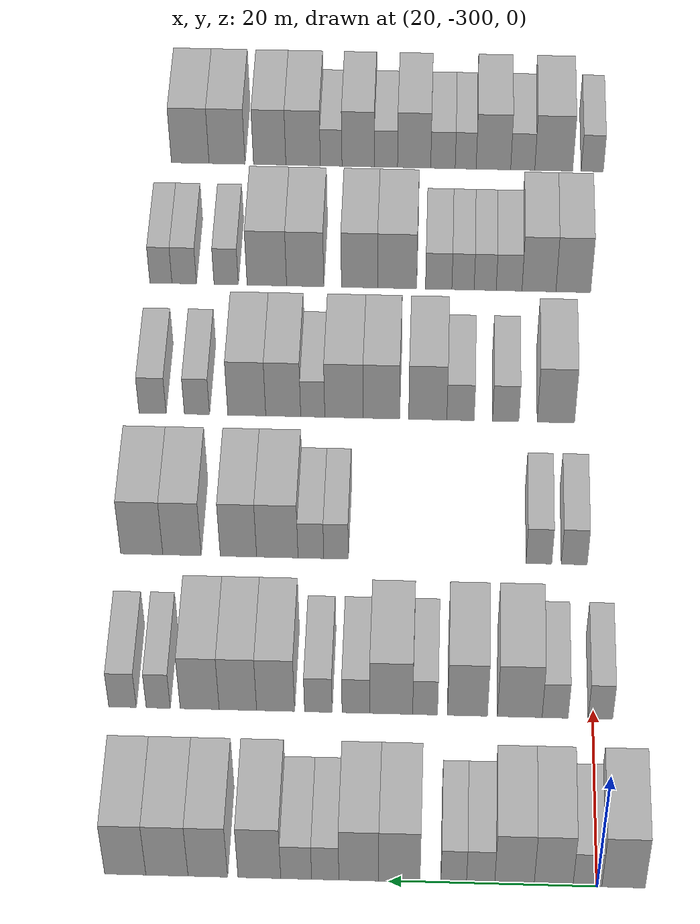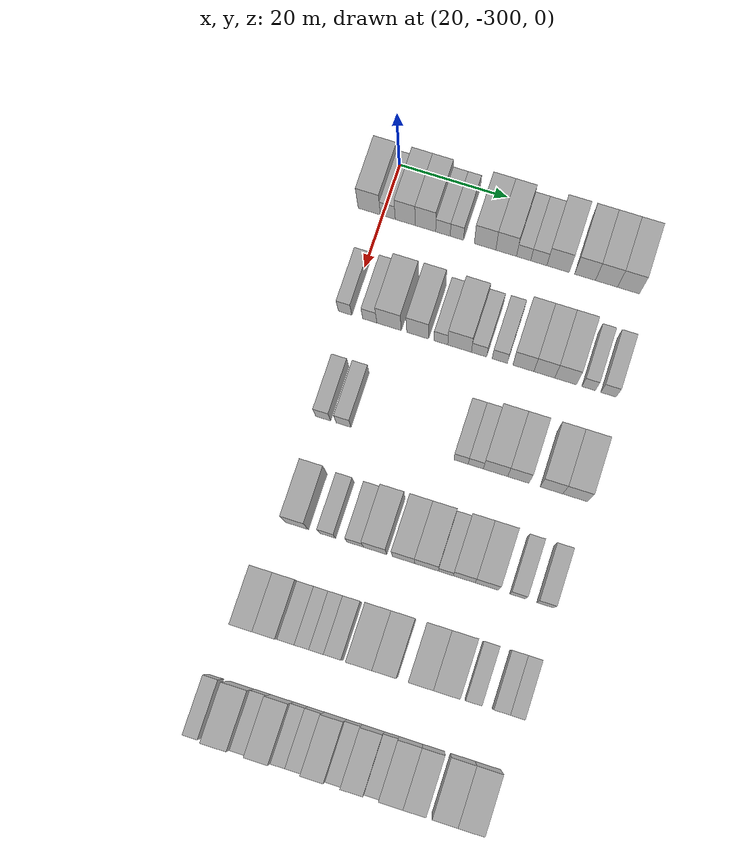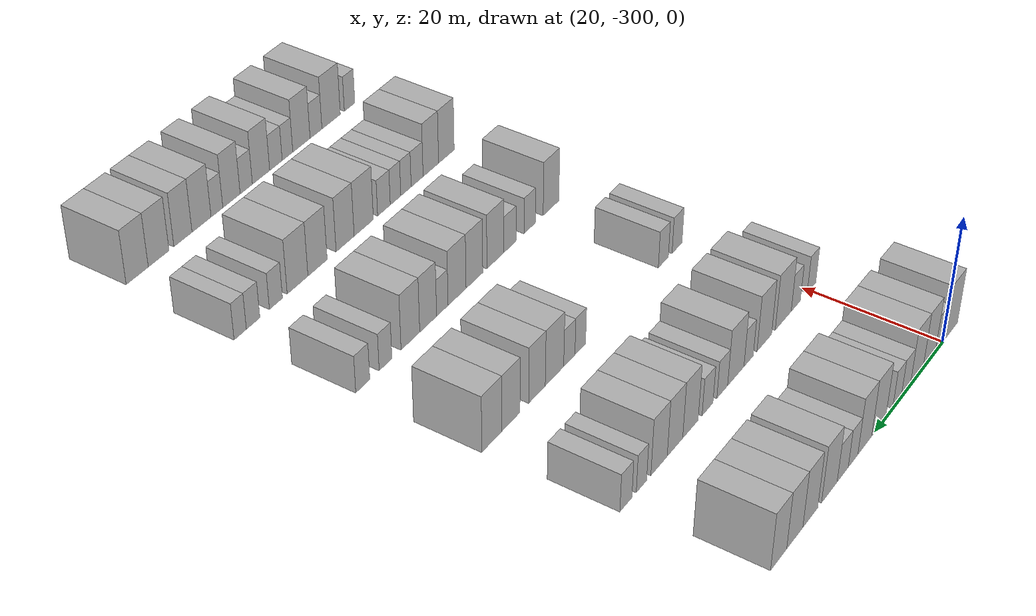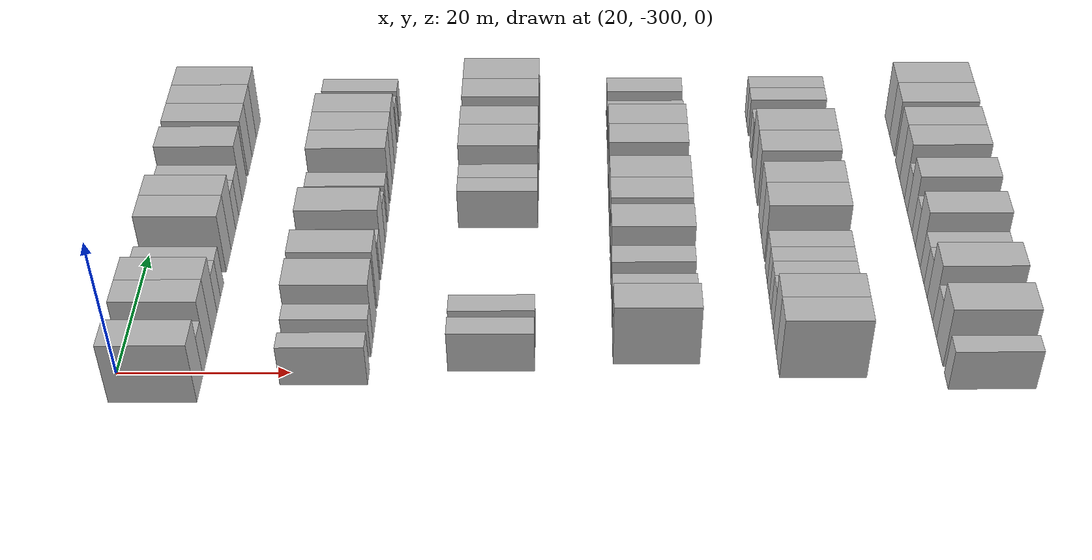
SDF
<sdf version="1.6">
 <world name="default">
  <model name="building_13">
   <static>1</static>
   <pose>25.0000 -302.4807 0 0.000000 0.000000 0.000000</pose>
   <link name="link">
    <pose>0 0 4.50 0 0 0</pose>
    <collision name="collision"><geometry><box><size>10.0000 4.1436 9.0000</size></box></geometry></collision>
    <visual name="visual">
     <cast_shadows>0</cast_shadows>
     <geometry><box><size>10.0000 4.1436 9.0000</size></box></geometry>
     <material>
      <script>
       <uri>model://HANNAS_wall/materials/scripts</uri>
       <uri>model://HANNAS_wall/materials/textures</uri>
       <name>vrc/HANNAS_wall</name>
      </script>
     </material>
    </visual>
   </link>
  </model>
  <model name="building_14">
   <static>1</static>
   <pose>25.0000 -299.0259 0 0.000000 0.000000 0.000000</pose>
   <link name="link">
    <pose>0 0 3.00 0 0 0</pose>
    <collision name="collision"><geometry><box><size>10.0000 2.7659 6.0000</size></box></geometry></collision>
    <visual name="visual">
     <cast_shadows>0</cast_shadows>
     <geometry><box><size>10.0000 2.7659 6.0000</size></box></geometry>
     <material>
      <script>
       <uri>model://HANNAS_wall/materials/scripts</uri>
       <uri>model://HANNAS_wall/materials/textures</uri>
       <name>vrc/HANNAS_wall</name>
      </script>
     </material>
    </visual>
   </link>
  </model>
  <model name="building_15">
   <static>1</static>
   <pose>25.0000 -295.7829 0 0.000000 0.000000 0.000000</pose>
   <link name="link">
    <pose>0 0 4.50 0 0 0</pose>
    <collision name="collision"><geometry><box><size>10.0000 3.7201 9.0000</size></box></geometry></collision>
    <visual name="visual">
     <cast_shadows>0</cast_shadows>
     <geometry><box><size>10.0000 3.7201 9.0000</size></box></geometry>
     <material>
      <script>
       <uri>model://HANNAS_wall/materials/scripts</uri>
       <uri>model://HANNAS_wall/materials/textures</uri>
       <name>vrc/HANNAS_wall</name>
      </script>
     </material>
    </visual>
   </link>
  </model>
  <model name="building_16">
   <static>1</static>
   <pose>25.0000 -292.0326 0 0.000000 0.000000 0.000000</pose>
   <link name="link">
    <pose>0 0 4.50 0 0 0</pose>
    <collision name="collision"><geometry><box><size>10.0000 3.7806 9.0000</size></box></geometry></collision>
    <visual name="visual">
     <cast_shadows>0</cast_shadows>
     <geometry><box><size>10.0000 3.7806 9.0000</size></box></geometry>
     <material>
      <script>
       <uri>model://HANNAS_wall/materials/scripts</uri>
       <uri>model://HANNAS_wall/materials/textures</uri>
       <name>vrc/HANNAS_wall</name>
      </script>
     </material>
    </visual>
   </link>
  </model>
  <model name="building_17">
   <static>1</static>
   <pose>25.0000 -288.7904 0 0.000000 0.000000 0.000000</pose>
   <link name="link">
    <pose>0 0 3.00 0 0 0</pose>
    <collision name="collision"><geometry><box><size>10.0000 2.7039 6.0000</size></box></geometry></collision>
    <visual name="visual">
     <cast_shadows>0</cast_shadows>
     <geometry><box><size>10.0000 2.7039 6.0000</size></box></geometry>
     <material>
      <script>
       <uri>model://HANNAS_wall/materials/scripts</uri>
       <uri>model://HANNAS_wall/materials/textures</uri>
       <name>vrc/HANNAS_wall</name>
      </script>
     </material>
    </visual>
   </link>
  </model>
  <model name="building_18">
   <static>1</static>
   <pose>25.0000 -286.2109 0 0.000000 0.000000 0.000000</pose>
   <link name="link">
    <pose>0 0 3.00 0 0 0</pose>
    <collision name="collision"><geometry><box><size>10.0000 2.4550 6.0000</size></box></geometry></collision>
    <visual name="visual">
     <cast_shadows>0</cast_shadows>
     <geometry><box><size>10.0000 2.4550 6.0000</size></box></geometry>
     <material>
      <script>
       <uri>model://HANNAS_wall/materials/scripts</uri>
       <uri>model://HANNAS_wall/materials/textures</uri>
       <name>vrc/HANNAS_wall</name>
      </script>
     </material>
    </visual>
   </link>
  </model>
  <model name="building_19">
   <static>1</static>
   <pose>25.0000 -281.0033 0 0.000000 0.000000 0.000000</pose>
   <link name="link">
    <pose>0 0 4.50 0 0 0</pose>
    <collision name="collision"><geometry><box><size>10.0000 3.9601 9.0000</size></box></geometry></collision>
    <visual name="visual">
     <cast_shadows>0</cast_shadows>
     <geometry><box><size>10.0000 3.9601 9.0000</size></box></geometry>
     <material>
      <script>
       <uri>model://HANNAS_wall/materials/scripts</uri>
       <uri>model://HANNAS_wall/materials/textures</uri>
       <name>vrc/HANNAS_wall</name>
      </script>
     </material>
    </visual>
   </link>
  </model>
  <model name="building_20">
   <static>1</static>
   <pose>25.0000 -277.1135 0 0.000000 0.000000 0.000000</pose>
   <link name="link">
    <pose>0 0 4.50 0 0 0</pose>
    <collision name="collision"><geometry><box><size>10.0000 3.8196 9.0000</size></box></geometry></collision>
    <visual name="visual">
     <cast_shadows>0</cast_shadows>
     <geometry><box><size>10.0000 3.8196 9.0000</size></box></geometry>
     <material>
      <script>
       <uri>model://HANNAS_wall/materials/scripts</uri>
       <uri>model://HANNAS_wall/materials/textures</uri>
       <name>vrc/HANNAS_wall</name>
      </script>
     </material>
    </visual>
   </link>
  </model>
  <model name="building_21">
   <static>1</static>
   <pose>25.0000 -273.8950 0 0.000000 0.000000 0.000000</pose>
   <link name="link">
    <pose>0 0 3.00 0 0 0</pose>
    <collision name="collision"><geometry><box><size>10.0000 2.6172 6.0000</size></box></geometry></collision>
    <visual name="visual">
     <cast_shadows>0</cast_shadows>
     <geometry><box><size>10.0000 2.6172 6.0000</size></box></geometry>
     <material>
      <script>
       <uri>model://HANNAS_wall/materials/scripts</uri>
       <uri>model://HANNAS_wall/materials/textures</uri>
       <name>vrc/HANNAS_wall</name>
      </script>
     </material>
    </visual>
   </link>
  </model>
  <model name="building_22">
   <static>1</static>
   <pose>25.0000 -271.1016 0 0.000000 0.000000 0.000000</pose>
   <link name="link">
    <pose>0 0 3.00 0 0 0</pose>
    <collision name="collision"><geometry><box><size>10.0000 2.9697 6.0000</size></box></geometry></collision>
    <visual name="visual">
     <cast_shadows>0</cast_shadows>
     <geometry><box><size>10.0000 2.9697 6.0000</size></box></geometry>
     <material>
      <script>
       <uri>model://HANNAS_wall/materials/scripts</uri>
       <uri>model://HANNAS_wall/materials/textures</uri>
       <name>vrc/HANNAS_wall</name>
      </script>
     </material>
    </visual>
   </link>
  </model>
  <model name="building_23">
   <static>1</static>
   <pose>25.0000 -267.5623 0 0.000000 0.000000 0.000000</pose>
   <link name="link">
    <pose>0 0 4.50 0 0 0</pose>
    <collision name="collision"><geometry><box><size>10.0000 4.1090 9.0000</size></box></geometry></collision>
    <visual name="visual">
     <cast_shadows>0</cast_shadows>
     <geometry><box><size>10.0000 4.1090 9.0000</size></box></geometry>
     <material>
      <script>
       <uri>model://HANNAS_wall/materials/scripts</uri>
       <uri>model://HANNAS_wall/materials/textures</uri>
       <name>vrc/HANNAS_wall</name>
      </script>
     </material>
    </visual>
   </link>
  </model>
  <model name="building_24">
   <static>1</static>
   <pose>25.0000 -262.6042 0 0.000000 0.000000 0.000000</pose>
   <link name="link">
    <pose>0 0 4.50 0 0 0</pose>
    <collision name="collision"><geometry><box><size>10.0000 3.8071 9.0000</size></box></geometry></collision>
    <visual name="visual">
     <cast_shadows>0</cast_shadows>
     <geometry><box><size>10.0000 3.8071 9.0000</size></box></geometry>
     <material>
      <script>
       <uri>model://HANNAS_wall/materials/scripts</uri>
       <uri>model://HANNAS_wall/materials/textures</uri>
       <name>vrc/HANNAS_wall</name>
      </script>
     </material>
    </visual>
   </link>
  </model>
  <model name="building_25">
   <static>1</static>
   <pose>25.0000 -258.6718 0 0.000000 0.000000 0.000000</pose>
   <link name="link">
    <pose>0 0 4.50 0 0 0</pose>
    <collision name="collision"><geometry><box><size>10.0000 4.0578 9.0000</size></box></geometry></collision>
    <visual name="visual">
     <cast_shadows>0</cast_shadows>
     <geometry><box><size>10.0000 4.0578 9.0000</size></box></geometry>
     <material>
      <script>
       <uri>model://HANNAS_wall/materials/scripts</uri>
       <uri>model://HANNAS_wall/materials/textures</uri>
       <name>vrc/HANNAS_wall</name>
      </script>
     </material>
    </visual>
   </link>
  </model>
  <model name="building_26">
   <static>1</static>
   <pose>25.0000 -254.6592 0 0.000000 0.000000 0.000000</pose>
   <link name="link">
    <pose>0 0 4.50 0 0 0</pose>
    <collision name="collision"><geometry><box><size>10.0000 3.9673 9.0000</size></box></geometry></collision>
    <visual name="visual">
     <cast_shadows>0</cast_shadows>
     <geometry><box><size>10.0000 3.9673 9.0000</size></box></geometry>
     <material>
      <script>
       <uri>model://HANNAS_wall/materials/scripts</uri>
       <uri>model://HANNAS_wall/materials/textures</uri>
       <name>vrc/HANNAS_wall</name>
      </script>
     </material>
    </visual>
   </link>
  </model>
  <model name="building_185">
   <static>1</static>
   <pose>44.0000 -300.6865 0 0.000000 0.000000 0.000000</pose>
   <link name="link">
    <pose>0 0 3.00 0 0 0</pose>
    <collision name="collision"><geometry><box><size>10.0000 2.4643 6.0000</size></box></geometry></collision>
    <visual name="visual">
     <cast_shadows>0</cast_shadows>
     <geometry><box><size>10.0000 2.4643 6.0000</size></box></geometry>
     <material>
      <script>
       <uri>model://HANNAS_wall/materials/scripts</uri>
       <uri>model://HANNAS_wall/materials/textures</uri>
       <name>vrc/HANNAS_wall</name>
      </script>
     </material>
    </visual>
   </link>
  </model>
  <model name="building_186">
   <static>1</static>
   <pose>44.0000 -296.1535 0 0.000000 0.000000 0.000000</pose>
   <link name="link">
    <pose>0 0 3.00 0 0 0</pose>
    <collision name="collision"><geometry><box><size>10.0000 2.6015 6.0000</size></box></geometry></collision>
    <visual name="visual">
     <cast_shadows>0</cast_shadows>
     <geometry><box><size>10.0000 2.6015 6.0000</size></box></geometry>
     <material>
      <script>
       <uri>model://HANNAS_wall/materials/scripts</uri>
       <uri>model://HANNAS_wall/materials/textures</uri>
       <name>vrc/HANNAS_wall</name>
      </script>
     </material>
    </visual>
   </link>
  </model>
  <model name="building_187">
   <static>1</static>
   <pose>44.0000 -292.6134 0 0.000000 0.000000 0.000000</pose>
   <link name="link">
    <pose>0 0 4.50 0 0 0</pose>
    <collision name="collision"><geometry><box><size>10.0000 4.4786 9.0000</size></box></geometry></collision>
    <visual name="visual">
     <cast_shadows>0</cast_shadows>
     <geometry><box><size>10.0000 4.4786 9.0000</size></box></geometry>
     <material>
      <script>
       <uri>model://HANNAS_wall/materials/scripts</uri>
       <uri>model://HANNAS_wall/materials/textures</uri>
       <name>vrc/HANNAS_wall</name>
      </script>
     </material>
    </visual>
   </link>
  </model>
  <model name="building_188">
   <static>1</static>
   <pose>44.0000 -287.3721 0 0.000000 0.000000 0.000000</pose>
   <link name="link">
    <pose>0 0 4.50 0 0 0</pose>
    <collision name="collision"><geometry><box><size>10.0000 4.0040 9.0000</size></box></geometry></collision>
    <visual name="visual">
     <cast_shadows>0</cast_shadows>
     <geometry><box><size>10.0000 4.0040 9.0000</size></box></geometry>
     <material>
      <script>
       <uri>model://HANNAS_wall/materials/scripts</uri>
       <uri>model://HANNAS_wall/materials/textures</uri>
       <name>vrc/HANNAS_wall</name>
      </script>
     </material>
    </visual>
   </link>
  </model>
  <model name="building_189">
   <static>1</static>
   <pose>44.0000 -283.1265 0 0.000000 0.000000 0.000000</pose>
   <link name="link">
    <pose>0 0 3.00 0 0 0</pose>
    <collision name="collision"><geometry><box><size>10.0000 2.4871 6.0000</size></box></geometry></collision>
    <visual name="visual">
     <cast_shadows>0</cast_shadows>
     <geometry><box><size>10.0000 2.4871 6.0000</size></box></geometry>
     <material>
      <script>
       <uri>model://HANNAS_wall/materials/scripts</uri>
       <uri>model://HANNAS_wall/materials/textures</uri>
       <name>vrc/HANNAS_wall</name>
      </script>
     </material>
    </visual>
   </link>
  </model>
  <model name="building_190">
   <static>1</static>
   <pose>44.0000 -279.7300 0 0.000000 0.000000 0.000000</pose>
   <link name="link">
    <pose>0 0 4.50 0 0 0</pose>
    <collision name="collision"><geometry><box><size>10.0000 4.3060 9.0000</size></box></geometry></collision>
    <visual name="visual">
     <cast_shadows>0</cast_shadows>
     <geometry><box><size>10.0000 4.3060 9.0000</size></box></geometry>
     <material>
      <script>
       <uri>model://HANNAS_wall/materials/scripts</uri>
       <uri>model://HANNAS_wall/materials/textures</uri>
       <name>vrc/HANNAS_wall</name>
      </script>
     </material>
    </visual>
   </link>
  </model>
  <model name="building_191">
   <static>1</static>
   <pose>44.0000 -276.1873 0 0.000000 0.000000 0.000000</pose>
   <link name="link">
    <pose>0 0 3.00 0 0 0</pose>
    <collision name="collision"><geometry><box><size>10.0000 2.7795 6.0000</size></box></geometry></collision>
    <visual name="visual">
     <cast_shadows>0</cast_shadows>
     <geometry><box><size>10.0000 2.7795 6.0000</size></box></geometry>
     <material>
      <script>
       <uri>model://HANNAS_wall/materials/scripts</uri>
       <uri>model://HANNAS_wall/materials/textures</uri>
       <name>vrc/HANNAS_wall</name>
      </script>
     </material>
    </visual>
   </link>
  </model>
  <model name="building_192">
   <static>1</static>
   <pose>44.0000 -272.4171 0 0.000000 0.000000 0.000000</pose>
   <link name="link">
    <pose>0 0 3.00 0 0 0</pose>
    <collision name="collision"><geometry><box><size>10.0000 2.7608 6.0000</size></box></geometry></collision>
    <visual name="visual">
     <cast_shadows>0</cast_shadows>
     <geometry><box><size>10.0000 2.7608 6.0000</size></box></geometry>
     <material>
      <script>
       <uri>model://HANNAS_wall/materials/scripts</uri>
       <uri>model://HANNAS_wall/materials/textures</uri>
       <name>vrc/HANNAS_wall</name>
      </script>
     </material>
    </visual>
   </link>
  </model>
  <model name="building_193">
   <static>1</static>
   <pose>44.0000 -268.1273 0 0.000000 0.000000 0.000000</pose>
   <link name="link">
    <pose>0 0 4.50 0 0 0</pose>
    <collision name="collision"><geometry><box><size>10.0000 3.8189 9.0000</size></box></geometry></collision>
    <visual name="visual">
     <cast_shadows>0</cast_shadows>
     <geometry><box><size>10.0000 3.8189 9.0000</size></box></geometry>
     <material>
      <script>
       <uri>model://HANNAS_wall/materials/scripts</uri>
       <uri>model://HANNAS_wall/materials/textures</uri>
       <name>vrc/HANNAS_wall</name>
      </script>
     </material>
    </visual>
   </link>
  </model>
  <model name="building_194">
   <static>1</static>
   <pose>44.0000 -264.3350 0 0.000000 0.000000 0.000000</pose>
   <link name="link">
    <pose>0 0 4.50 0 0 0</pose>
    <collision name="collision"><geometry><box><size>10.0000 3.7657 9.0000</size></box></geometry></collision>
    <visual name="visual">
     <cast_shadows>0</cast_shadows>
     <geometry><box><size>10.0000 3.7657 9.0000</size></box></geometry>
     <material>
      <script>
       <uri>model://HANNAS_wall/materials/scripts</uri>
       <uri>model://HANNAS_wall/materials/textures</uri>
       <name>vrc/HANNAS_wall</name>
      </script>
     </material>
    </visual>
   </link>
  </model>
  <model name="building_195">
   <static>1</static>
   <pose>44.0000 -260.4942 0 0.000000 0.000000 0.000000</pose>
   <link name="link">
    <pose>0 0 4.50 0 0 0</pose>
    <collision name="collision"><geometry><box><size>10.0000 3.9159 9.0000</size></box></geometry></collision>
    <visual name="visual">
     <cast_shadows>0</cast_shadows>
     <geometry><box><size>10.0000 3.9159 9.0000</size></box></geometry>
     <material>
      <script>
       <uri>model://HANNAS_wall/materials/scripts</uri>
       <uri>model://HANNAS_wall/materials/textures</uri>
       <name>vrc/HANNAS_wall</name>
      </script>
     </material>
    </visual>
   </link>
  </model>
  <model name="building_196">
   <static>1</static>
   <pose>44.0000 -256.3250 0 0.000000 0.000000 0.000000</pose>
   <link name="link">
    <pose>0 0 3.00 0 0 0</pose>
    <collision name="collision"><geometry><box><size>10.0000 2.4225 6.0000</size></box></geometry></collision>
    <visual name="visual">
     <cast_shadows>0</cast_shadows>
     <geometry><box><size>10.0000 2.4225 6.0000</size></box></geometry>
     <material>
      <script>
       <uri>model://HANNAS_wall/materials/scripts</uri>
       <uri>model://HANNAS_wall/materials/textures</uri>
       <name>vrc/HANNAS_wall</name>
      </script>
     </material>
    </visual>
   </link>
  </model>
  <model name="building_197">
   <static>1</static>
   <pose>44.0000 -252.7276 0 0.000000 0.000000 0.000000</pose>
   <link name="link">
    <pose>0 0 3.00 0 0 0</pose>
    <collision name="collision"><geometry><box><size>10.0000 2.7722 6.0000</size></box></geometry></collision>
    <visual name="visual">
     <cast_shadows>0</cast_shadows>
     <geometry><box><size>10.0000 2.7722 6.0000</size></box></geometry>
     <material>
      <script>
       <uri>model://HANNAS_wall/materials/scripts</uri>
       <uri>model://HANNAS_wall/materials/textures</uri>
       <name>vrc/HANNAS_wall</name>
      </script>
     </material>
    </visual>
   </link>
  </model>
  <model name="building_356">
   <static>1</static>
   <pose>63.0000 -298.3703 0 0.000000 0.000000 0.000000</pose>
   <link name="link">
    <pose>0 0 3.00 0 0 0</pose>
    <collision name="collision"><geometry><box><size>10.0000 2.7056 6.0000</size></box></geometry></collision>
    <visual name="visual">
     <cast_shadows>0</cast_shadows>
     <geometry><box><size>10.0000 2.7056 6.0000</size></box></geometry>
     <material>
      <script>
       <uri>model://HANNAS_wall/materials/scripts</uri>
       <uri>model://HANNAS_wall/materials/textures</uri>
       <name>vrc/HANNAS_wall</name>
      </script>
     </material>
    </visual>
   </link>
  </model>
  <model name="building_357">
   <static>1</static>
   <pose>63.0000 -294.6697 0 0.000000 0.000000 0.000000</pose>
   <link name="link">
    <pose>0 0 3.00 0 0 0</pose>
    <collision name="collision"><geometry><box><size>10.0000 2.6958 6.0000</size></box></geometry></collision>
    <visual name="visual">
     <cast_shadows>0</cast_shadows>
     <geometry><box><size>10.0000 2.6958 6.0000</size></box></geometry>
     <material>
      <script>
       <uri>model://HANNAS_wall/materials/scripts</uri>
       <uri>model://HANNAS_wall/materials/textures</uri>
       <name>vrc/HANNAS_wall</name>
      </script>
     </material>
    </visual>
   </link>
  </model>
  <model name="building_358">
   <static>1</static>
   <pose>63.0000 -273.4593 0 0.000000 0.000000 0.000000</pose>
   <link name="link">
    <pose>0 0 3.00 0 0 0</pose>
    <collision name="collision"><geometry><box><size>10.0000 2.5750 6.0000</size></box></geometry></collision>
    <visual name="visual">
     <cast_shadows>0</cast_shadows>
     <geometry><box><size>10.0000 2.5750 6.0000</size></box></geometry>
     <material>
      <script>
       <uri>model://HANNAS_wall/materials/scripts</uri>
       <uri>model://HANNAS_wall/materials/textures</uri>
       <name>vrc/HANNAS_wall</name>
      </script>
     </material>
    </visual>
   </link>
  </model>
  <model name="building_359">
   <static>1</static>
   <pose>63.0000 -270.8241 0 0.000000 0.000000 0.000000</pose>
   <link name="link">
    <pose>0 0 3.00 0 0 0</pose>
    <collision name="collision"><geometry><box><size>10.0000 2.6953 6.0000</size></box></geometry></collision>
    <visual name="visual">
     <cast_shadows>0</cast_shadows>
     <geometry><box><size>10.0000 2.6953 6.0000</size></box></geometry>
     <material>
      <script>
       <uri>model://HANNAS_wall/materials/scripts</uri>
       <uri>model://HANNAS_wall/materials/textures</uri>
       <name>vrc/HANNAS_wall</name>
      </script>
     </material>
    </visual>
   </link>
  </model>
  <model name="building_360">
   <static>1</static>
   <pose>63.0000 -267.3059 0 0.000000 0.000000 0.000000</pose>
   <link name="link">
    <pose>0 0 4.50 0 0 0</pose>
    <collision name="collision"><geometry><box><size>10.0000 4.3413 9.0000</size></box></geometry></collision>
    <visual name="visual">
     <cast_shadows>0</cast_shadows>
     <geometry><box><size>10.0000 4.3413 9.0000</size></box></geometry>
     <material>
      <script>
       <uri>model://HANNAS_wall/materials/scripts</uri>
       <uri>model://HANNAS_wall/materials/textures</uri>
       <name>vrc/HANNAS_wall</name>
      </script>
     </material>
    </visual>
   </link>
  </model>
  <model name="building_361">
   <static>1</static>
   <pose>63.0000 -263.2288 0 0.000000 0.000000 0.000000</pose>
   <link name="link">
    <pose>0 0 4.50 0 0 0</pose>
    <collision name="collision"><geometry><box><size>10.0000 3.8128 9.0000</size></box></geometry></collision>
    <visual name="visual">
     <cast_shadows>0</cast_shadows>
     <geometry><box><size>10.0000 3.8128 9.0000</size></box></geometry>
     <material>
      <script>
       <uri>model://HANNAS_wall/materials/scripts</uri>
       <uri>model://HANNAS_wall/materials/textures</uri>
       <name>vrc/HANNAS_wall</name>
      </script>
     </material>
    </visual>
   </link>
  </model>
  <model name="building_362">
   <static>1</static>
   <pose>63.0000 -257.3060 0 0.000000 0.000000 0.000000</pose>
   <link name="link">
    <pose>0 0 4.50 0 0 0</pose>
    <collision name="collision"><geometry><box><size>10.0000 4.0329 9.0000</size></box></geometry></collision>
    <visual name="visual">
     <cast_shadows>0</cast_shadows>
     <geometry><box><size>10.0000 4.0329 9.0000</size></box></geometry>
     <material>
      <script>
       <uri>model://HANNAS_wall/materials/scripts</uri>
       <uri>model://HANNAS_wall/materials/textures</uri>
       <name>vrc/HANNAS_wall</name>
      </script>
     </material>
    </visual>
   </link>
  </model>
  <model name="building_363">
   <static>1</static>
   <pose>63.0000 -253.0787 0 0.000000 0.000000 0.000000</pose>
   <link name="link">
    <pose>0 0 4.50 0 0 0</pose>
    <collision name="collision"><geometry><box><size>10.0000 4.4217 9.0000</size></box></geometry></collision>
    <visual name="visual">
     <cast_shadows>0</cast_shadows>
     <geometry><box><size>10.0000 4.4217 9.0000</size></box></geometry>
     <material>
      <script>
       <uri>model://HANNAS_wall/materials/scripts</uri>
       <uri>model://HANNAS_wall/materials/textures</uri>
       <name>vrc/HANNAS_wall</name>
      </script>
     </material>
    </visual>
   </link>
  </model>
  <model name="building_524">
   <static>1</static>
   <pose>82.0000 -296.6676 0 0.000000 0.000000 0.000000</pose>
   <link name="link">
    <pose>0 0 4.50 0 0 0</pose>
    <collision name="collision"><geometry><box><size>10.0000 4.0596 9.0000</size></box></geometry></collision>
    <visual name="visual">
     <cast_shadows>0</cast_shadows>
     <geometry><box><size>10.0000 4.0596 9.0000</size></box></geometry>
     <material>
      <script>
       <uri>model://HANNAS_wall/materials/scripts</uri>
       <uri>model://HANNAS_wall/materials/textures</uri>
       <name>vrc/HANNAS_wall</name>
      </script>
     </material>
    </visual>
   </link>
  </model>
  <model name="building_525">
   <static>1</static>
   <pose>82.0000 -291.2064 0 0.000000 0.000000 0.000000</pose>
   <link name="link">
    <pose>0 0 3.00 0 0 0</pose>
    <collision name="collision"><geometry><box><size>10.0000 2.8627 6.0000</size></box></geometry></collision>
    <visual name="visual">
     <cast_shadows>0</cast_shadows>
     <geometry><box><size>10.0000 2.8627 6.0000</size></box></geometry>
     <material>
      <script>
       <uri>model://HANNAS_wall/materials/scripts</uri>
       <uri>model://HANNAS_wall/materials/textures</uri>
       <name>vrc/HANNAS_wall</name>
      </script>
     </material>
    </visual>
   </link>
  </model>
  <model name="building_526">
   <static>1</static>
   <pose>82.0000 -286.2865 0 0.000000 0.000000 0.000000</pose>
   <link name="link">
    <pose>0 0 3.00 0 0 0</pose>
    <collision name="collision"><geometry><box><size>10.0000 2.9771 6.0000</size></box></geometry></collision>
    <visual name="visual">
     <cast_shadows>0</cast_shadows>
     <geometry><box><size>10.0000 2.9771 6.0000</size></box></geometry>
     <material>
      <script>
       <uri>model://HANNAS_wall/materials/scripts</uri>
       <uri>model://HANNAS_wall/materials/textures</uri>
       <name>vrc/HANNAS_wall</name>
      </script>
     </material>
    </visual>
   </link>
  </model>
  <model name="building_527">
   <static>1</static>
   <pose>82.0000 -282.7249 0 0.000000 0.000000 0.000000</pose>
   <link name="link">
    <pose>0 0 4.50 0 0 0</pose>
    <collision name="collision"><geometry><box><size>10.0000 4.1462 9.0000</size></box></geometry></collision>
    <visual name="visual">
     <cast_shadows>0</cast_shadows>
     <geometry><box><size>10.0000 4.1462 9.0000</size></box></geometry>
     <material>
      <script>
       <uri>model://HANNAS_wall/materials/scripts</uri>
       <uri>model://HANNAS_wall/materials/textures</uri>
       <name>vrc/HANNAS_wall</name>
      </script>
     </material>
    </visual>
   </link>
  </model>
  <model name="building_528">
   <static>1</static>
   <pose>82.0000 -277.6697 0 0.000000 0.000000 0.000000</pose>
   <link name="link">
    <pose>0 0 4.50 0 0 0</pose>
    <collision name="collision"><geometry><box><size>10.0000 3.9642 9.0000</size></box></geometry></collision>
    <visual name="visual">
     <cast_shadows>0</cast_shadows>
     <geometry><box><size>10.0000 3.9642 9.0000</size></box></geometry>
     <material>
      <script>
       <uri>model://HANNAS_wall/materials/scripts</uri>
       <uri>model://HANNAS_wall/materials/textures</uri>
       <name>vrc/HANNAS_wall</name>
      </script>
     </material>
    </visual>
   </link>
  </model>
  <model name="building_529">
   <static>1</static>
   <pose>82.0000 -273.5912 0 0.000000 0.000000 0.000000</pose>
   <link name="link">
    <pose>0 0 4.50 0 0 0</pose>
    <collision name="collision"><geometry><box><size>10.0000 4.1927 9.0000</size></box></geometry></collision>
    <visual name="visual">
     <cast_shadows>0</cast_shadows>
     <geometry><box><size>10.0000 4.1927 9.0000</size></box></geometry>
     <material>
      <script>
       <uri>model://HANNAS_wall/materials/scripts</uri>
       <uri>model://HANNAS_wall/materials/textures</uri>
       <name>vrc/HANNAS_wall</name>
      </script>
     </material>
    </visual>
   </link>
  </model>
  <model name="building_530">
   <static>1</static>
   <pose>82.0000 -270.1802 0 0.000000 0.000000 0.000000</pose>
   <link name="link">
    <pose>0 0 3.00 0 0 0</pose>
    <collision name="collision"><geometry><box><size>10.0000 2.6294 6.0000</size></box></geometry></collision>
    <visual name="visual">
     <cast_shadows>0</cast_shadows>
     <geometry><box><size>10.0000 2.6294 6.0000</size></box></geometry>
     <material>
      <script>
       <uri>model://HANNAS_wall/materials/scripts</uri>
       <uri>model://HANNAS_wall/materials/textures</uri>
       <name>vrc/HANNAS_wall</name>
      </script>
     </material>
    </visual>
   </link>
  </model>
  <model name="building_531">
   <static>1</static>
   <pose>82.0000 -266.9576 0 0.000000 0.000000 0.000000</pose>
   <link name="link">
    <pose>0 0 4.50 0 0 0</pose>
    <collision name="collision"><geometry><box><size>10.0000 3.8159 9.0000</size></box></geometry></collision>
    <visual name="visual">
     <cast_shadows>0</cast_shadows>
     <geometry><box><size>10.0000 3.8159 9.0000</size></box></geometry>
     <material>
      <script>
       <uri>model://HANNAS_wall/materials/scripts</uri>
       <uri>model://HANNAS_wall/materials/textures</uri>
       <name>vrc/HANNAS_wall</name>
      </script>
     </material>
    </visual>
   </link>
  </model>
  <model name="building_532">
   <static>1</static>
   <pose>82.0000 -262.9802 0 0.000000 0.000000 0.000000</pose>
   <link name="link">
    <pose>0 0 4.50 0 0 0</pose>
    <collision name="collision"><geometry><box><size>10.0000 4.1388 9.0000</size></box></geometry></collision>
    <visual name="visual">
     <cast_shadows>0</cast_shadows>
     <geometry><box><size>10.0000 4.1388 9.0000</size></box></geometry>
     <material>
      <script>
       <uri>model://HANNAS_wall/materials/scripts</uri>
       <uri>model://HANNAS_wall/materials/textures</uri>
       <name>vrc/HANNAS_wall</name>
      </script>
     </material>
    </visual>
   </link>
  </model>
  <model name="building_533">
   <static>1</static>
   <pose>82.0000 -257.5358 0 0.000000 0.000000 0.000000</pose>
   <link name="link">
    <pose>0 0 3.00 0 0 0</pose>
    <collision name="collision"><geometry><box><size>10.0000 2.7500 6.0000</size></box></geometry></collision>
    <visual name="visual">
     <cast_shadows>0</cast_shadows>
     <geometry><box><size>10.0000 2.7500 6.0000</size></box></geometry>
     <material>
      <script>
       <uri>model://HANNAS_wall/materials/scripts</uri>
       <uri>model://HANNAS_wall/materials/textures</uri>
       <name>vrc/HANNAS_wall</name>
      </script>
     </material>
    </visual>
   </link>
  </model>
  <model name="building_534">
   <static>1</static>
   <pose>82.0000 -252.6828 0 0.000000 0.000000 0.000000</pose>
   <link name="link">
    <pose>0 0 3.00 0 0 0</pose>
    <collision name="collision"><geometry><box><size>10.0000 2.9559 6.0000</size></box></geometry></collision>
    <visual name="visual">
     <cast_shadows>0</cast_shadows>
     <geometry><box><size>10.0000 2.9559 6.0000</size></box></geometry>
     <material>
      <script>
       <uri>model://HANNAS_wall/materials/scripts</uri>
       <uri>model://HANNAS_wall/materials/textures</uri>
       <name>vrc/HANNAS_wall</name>
      </script>
     </material>
    </visual>
   </link>
  </model>
  <model name="building_689">
   <static>1</static>
   <pose>101.0000 -298.8625 0 0.000000 0.000000 0.000000</pose>
   <link name="link">
    <pose>0 0 4.50 0 0 0</pose>
    <collision name="collision"><geometry><box><size>10.0000 3.9230 9.0000</size></box></geometry></collision>
    <visual name="visual">
     <cast_shadows>0</cast_shadows>
     <geometry><box><size>10.0000 3.9230 9.0000</size></box></geometry>
     <material>
      <script>
       <uri>model://HANNAS_wall/materials/scripts</uri>
       <uri>model://HANNAS_wall/materials/textures</uri>
       <name>vrc/HANNAS_wall</name>
      </script>
     </material>
    </visual>
   </link>
  </model>
  <model name="building_690">
   <static>1</static>
   <pose>101.0000 -294.9779 0 0.000000 0.000000 0.000000</pose>
   <link name="link">
    <pose>0 0 4.50 0 0 0</pose>
    <collision name="collision"><geometry><box><size>10.0000 3.8462 9.0000</size></box></geometry></collision>
    <visual name="visual">
     <cast_shadows>0</cast_shadows>
     <geometry><box><size>10.0000 3.8462 9.0000</size></box></geometry>
     <material>
      <script>
       <uri>model://HANNAS_wall/materials/scripts</uri>
       <uri>model://HANNAS_wall/materials/textures</uri>
       <name>vrc/HANNAS_wall</name>
      </script>
     </material>
    </visual>
   </link>
  </model>
  <model name="building_691">
   <static>1</static>
   <pose>101.0000 -291.5956 0 0.000000 0.000000 0.000000</pose>
   <link name="link">
    <pose>0 0 3.00 0 0 0</pose>
    <collision name="collision"><geometry><box><size>10.0000 2.9183 6.0000</size></box></geometry></collision>
    <visual name="visual">
     <cast_shadows>0</cast_shadows>
     <geometry><box><size>10.0000 2.9183 6.0000</size></box></geometry>
     <material>
      <script>
       <uri>model://HANNAS_wall/materials/scripts</uri>
       <uri>model://HANNAS_wall/materials/textures</uri>
       <name>vrc/HANNAS_wall</name>
      </script>
     </material>
    </visual>
   </link>
  </model>
  <model name="building_692">
   <static>1</static>
   <pose>101.0000 -288.8843 0 0.000000 0.000000 0.000000</pose>
   <link name="link">
    <pose>0 0 3.00 0 0 0</pose>
    <collision name="collision"><geometry><box><size>10.0000 2.5043 6.0000</size></box></geometry></collision>
    <visual name="visual">
     <cast_shadows>0</cast_shadows>
     <geometry><box><size>10.0000 2.5043 6.0000</size></box></geometry>
     <material>
      <script>
       <uri>model://HANNAS_wall/materials/scripts</uri>
       <uri>model://HANNAS_wall/materials/textures</uri>
       <name>vrc/HANNAS_wall</name>
      </script>
     </material>
    </visual>
   </link>
  </model>
  <model name="building_693">
   <static>1</static>
   <pose>101.0000 -286.3735 0 0.000000 0.000000 0.000000</pose>
   <link name="link">
    <pose>0 0 3.00 0 0 0</pose>
    <collision name="collision"><geometry><box><size>10.0000 2.5172 6.0000</size></box></geometry></collision>
    <visual name="visual">
     <cast_shadows>0</cast_shadows>
     <geometry><box><size>10.0000 2.5172 6.0000</size></box></geometry>
     <material>
      <script>
       <uri>model://HANNAS_wall/materials/scripts</uri>
       <uri>model://HANNAS_wall/materials/textures</uri>
       <name>vrc/HANNAS_wall</name>
      </script>
     </material>
    </visual>
   </link>
  </model>
  <model name="building_694">
   <static>1</static>
   <pose>101.0000 -283.6233 0 0.000000 0.000000 0.000000</pose>
   <link name="link">
    <pose>0 0 3.00 0 0 0</pose>
    <collision name="collision"><geometry><box><size>10.0000 2.9832 6.0000</size></box></geometry></collision>
    <visual name="visual">
     <cast_shadows>0</cast_shadows>
     <geometry><box><size>10.0000 2.9832 6.0000</size></box></geometry>
     <material>
      <script>
       <uri>model://HANNAS_wall/materials/scripts</uri>
       <uri>model://HANNAS_wall/materials/textures</uri>
       <name>vrc/HANNAS_wall</name>
      </script>
     </material>
    </visual>
   </link>
  </model>
  <model name="building_695">
   <static>1</static>
   <pose>101.0000 -278.9151 0 0.000000 0.000000 0.000000</pose>
   <link name="link">
    <pose>0 0 4.50 0 0 0</pose>
    <collision name="collision"><geometry><box><size>10.0000 4.4332 9.0000</size></box></geometry></collision>
    <visual name="visual">
     <cast_shadows>0</cast_shadows>
     <geometry><box><size>10.0000 4.4332 9.0000</size></box></geometry>
     <material>
      <script>
       <uri>model://HANNAS_wall/materials/scripts</uri>
       <uri>model://HANNAS_wall/materials/textures</uri>
       <name>vrc/HANNAS_wall</name>
      </script>
     </material>
    </visual>
   </link>
  </model>
  <model name="building_696">
   <static>1</static>
   <pose>101.0000 -274.6526 0 0.000000 0.000000 0.000000</pose>
   <link name="link">
    <pose>0 0 4.50 0 0 0</pose>
    <collision name="collision"><geometry><box><size>10.0000 4.0920 9.0000</size></box></geometry></collision>
    <visual name="visual">
     <cast_shadows>0</cast_shadows>
     <geometry><box><size>10.0000 4.0920 9.0000</size></box></geometry>
     <material>
      <script>
       <uri>model://HANNAS_wall/materials/scripts</uri>
       <uri>model://HANNAS_wall/materials/textures</uri>
       <name>vrc/HANNAS_wall</name>
      </script>
     </material>
    </visual>
   </link>
  </model>
  <model name="building_697">
   <static>1</static>
   <pose>101.0000 -268.4915 0 0.000000 0.000000 0.000000</pose>
   <link name="link">
    <pose>0 0 4.50 0 0 0</pose>
    <collision name="collision"><geometry><box><size>10.0000 4.2302 9.0000</size></box></geometry></collision>
    <visual name="visual">
     <cast_shadows>0</cast_shadows>
     <geometry><box><size>10.0000 4.2302 9.0000</size></box></geometry>
     <material>
      <script>
       <uri>model://HANNAS_wall/materials/scripts</uri>
       <uri>model://HANNAS_wall/materials/textures</uri>
       <name>vrc/HANNAS_wall</name>
      </script>
     </material>
    </visual>
   </link>
  </model>
  <model name="building_698">
   <static>1</static>
   <pose>101.0000 -264.1330 0 0.000000 0.000000 0.000000</pose>
   <link name="link">
    <pose>0 0 4.50 0 0 0</pose>
    <collision name="collision"><geometry><box><size>10.0000 4.4867 9.0000</size></box></geometry></collision>
    <visual name="visual">
     <cast_shadows>0</cast_shadows>
     <geometry><box><size>10.0000 4.4867 9.0000</size></box></geometry>
     <material>
      <script>
       <uri>model://HANNAS_wall/materials/scripts</uri>
       <uri>model://HANNAS_wall/materials/textures</uri>
       <name>vrc/HANNAS_wall</name>
      </script>
     </material>
    </visual>
   </link>
  </model>
  <model name="building_699">
   <static>1</static>
   <pose>101.0000 -259.5119 0 0.000000 0.000000 0.000000</pose>
   <link name="link">
    <pose>0 0 3.00 0 0 0</pose>
    <collision name="collision"><geometry><box><size>10.0000 2.7554 6.0000</size></box></geometry></collision>
    <visual name="visual">
     <cast_shadows>0</cast_shadows>
     <geometry><box><size>10.0000 2.7554 6.0000</size></box></geometry>
     <material>
      <script>
       <uri>model://HANNAS_wall/materials/scripts</uri>
       <uri>model://HANNAS_wall/materials/textures</uri>
       <name>vrc/HANNAS_wall</name>
      </script>
     </material>
    </visual>
   </link>
  </model>
  <model name="building_700">
   <static>1</static>
   <pose>101.0000 -254.7424 0 0.000000 0.000000 0.000000</pose>
   <link name="link">
    <pose>0 0 3.00 0 0 0</pose>
    <collision name="collision"><geometry><box><size>10.0000 2.7835 6.0000</size></box></geometry></collision>
    <visual name="visual">
     <cast_shadows>0</cast_shadows>
     <geometry><box><size>10.0000 2.7835 6.0000</size></box></geometry>
     <material>
      <script>
       <uri>model://HANNAS_wall/materials/scripts</uri>
       <uri>model://HANNAS_wall/materials/textures</uri>
       <name>vrc/HANNAS_wall</name>
      </script>
     </material>
    </visual>
   </link>
  </model>
  <model name="building_701">
   <static>1</static>
   <pose>101.0000 -252.0953 0 0.000000 0.000000 0.000000</pose>
   <link name="link">
    <pose>0 0 3.00 0 0 0</pose>
    <collision name="collision"><geometry><box><size>10.0000 2.5108 6.0000</size></box></geometry></collision>
    <visual name="visual">
     <cast_shadows>0</cast_shadows>
     <geometry><box><size>10.0000 2.5108 6.0000</size></box></geometry>
     <material>
      <script>
       <uri>model://HANNAS_wall/materials/scripts</uri>
       <uri>model://HANNAS_wall/materials/textures</uri>
       <name>vrc/HANNAS_wall</name>
      </script>
     </material>
    </visual>
   </link>
  </model>
  <model name="building_865">
   <static>1</static>
   <pose>120.0000 -301.3857 0 0.000000 0.000000 0.000000</pose>
   <link name="link">
    <pose>0 0 3.00 0 0 0</pose>
    <collision name="collision"><geometry><box><size>10.0000 2.5911 6.0000</size></box></geometry></collision>
    <visual name="visual">
     <cast_shadows>0</cast_shadows>
     <geometry><box><size>10.0000 2.5911 6.0000</size></box></geometry>
     <material>
      <script>
       <uri>model://HANNAS_wall/materials/scripts</uri>
       <uri>model://HANNAS_wall/materials/textures</uri>
       <name>vrc/HANNAS_wall</name>
      </script>
     </material>
    </visual>
   </link>
  </model>
  <model name="building_866">
   <static>1</static>
   <pose>120.0000 -296.8630 0 0.000000 0.000000 0.000000</pose>
   <link name="link">
    <pose>0 0 4.50 0 0 0</pose>
    <collision name="collision"><geometry><box><size>10.0000 4.4543 9.0000</size></box></geometry></collision>
    <visual name="visual">
     <cast_shadows>0</cast_shadows>
     <geometry><box><size>10.0000 4.4543 9.0000</size></box></geometry>
     <material>
      <script>
       <uri>model://HANNAS_wall/materials/scripts</uri>
       <uri>model://HANNAS_wall/materials/textures</uri>
       <name>vrc/HANNAS_wall</name>
      </script>
     </material>
    </visual>
   </link>
  </model>
  <model name="building_867">
   <static>1</static>
   <pose>120.0000 -293.2196 0 0.000000 0.000000 0.000000</pose>
   <link name="link">
    <pose>0 0 3.00 0 0 0</pose>
    <collision name="collision"><geometry><box><size>10.0000 2.8324 6.0000</size></box></geometry></collision>
    <visual name="visual">
     <cast_shadows>0</cast_shadows>
     <geometry><box><size>10.0000 2.8324 6.0000</size></box></geometry>
     <material>
      <script>
       <uri>model://HANNAS_wall/materials/scripts</uri>
       <uri>model://HANNAS_wall/materials/textures</uri>
       <name>vrc/HANNAS_wall</name>
      </script>
     </material>
    </visual>
   </link>
  </model>
  <model name="building_868">
   <static>1</static>
   <pose>120.0000 -289.7698 0 0.000000 0.000000 0.000000</pose>
   <link name="link">
    <pose>0 0 4.50 0 0 0</pose>
    <collision name="collision"><geometry><box><size>10.0000 4.0673 9.0000</size></box></geometry></collision>
    <visual name="visual">
     <cast_shadows>0</cast_shadows>
     <geometry><box><size>10.0000 4.0673 9.0000</size></box></geometry>
     <material>
      <script>
       <uri>model://HANNAS_wall/materials/scripts</uri>
       <uri>model://HANNAS_wall/materials/textures</uri>
       <name>vrc/HANNAS_wall</name>
      </script>
     </material>
    </visual>
   </link>
  </model>
  <model name="building_869">
   <static>1</static>
   <pose>120.0000 -286.5056 0 0.000000 0.000000 0.000000</pose>
   <link name="link">
    <pose>0 0 3.00 0 0 0</pose>
    <collision name="collision"><geometry><box><size>10.0000 2.4610 6.0000</size></box></geometry></collision>
    <visual name="visual">
     <cast_shadows>0</cast_shadows>
     <geometry><box><size>10.0000 2.4610 6.0000</size></box></geometry>
     <material>
      <script>
       <uri>model://HANNAS_wall/materials/scripts</uri>
       <uri>model://HANNAS_wall/materials/textures</uri>
       <name>vrc/HANNAS_wall</name>
      </script>
     </material>
    </visual>
   </link>
  </model>
  <model name="building_870">
   <static>1</static>
   <pose>120.0000 -283.8382 0 0.000000 0.000000 0.000000</pose>
   <link name="link">
    <pose>0 0 3.00 0 0 0</pose>
    <collision name="collision"><geometry><box><size>10.0000 2.8738 6.0000</size></box></geometry></collision>
    <visual name="visual">
     <cast_shadows>0</cast_shadows>
     <geometry><box><size>10.0000 2.8738 6.0000</size></box></geometry>
     <material>
      <script>
       <uri>model://HANNAS_wall/materials/scripts</uri>
       <uri>model://HANNAS_wall/materials/textures</uri>
       <name>vrc/HANNAS_wall</name>
      </script>
     </material>
    </visual>
   </link>
  </model>
  <model name="building_871">
   <static>1</static>
   <pose>120.0000 -280.4484 0 0.000000 0.000000 0.000000</pose>
   <link name="link">
    <pose>0 0 4.50 0 0 0</pose>
    <collision name="collision"><geometry><box><size>10.0000 3.9058 9.0000</size></box></geometry></collision>
    <visual name="visual">
     <cast_shadows>0</cast_shadows>
     <geometry><box><size>10.0000 3.9058 9.0000</size></box></geometry>
     <material>
      <script>
       <uri>model://HANNAS_wall/materials/scripts</uri>
       <uri>model://HANNAS_wall/materials/textures</uri>
       <name>vrc/HANNAS_wall</name>
      </script>
     </material>
    </visual>
   </link>
  </model>
  <model name="building_872">
   <static>1</static>
   <pose>120.0000 -277.1271 0 0.000000 0.000000 0.000000</pose>
   <link name="link">
    <pose>0 0 3.00 0 0 0</pose>
    <collision name="collision"><geometry><box><size>10.0000 2.7367 6.0000</size></box></geometry></collision>
    <visual name="visual">
     <cast_shadows>0</cast_shadows>
     <geometry><box><size>10.0000 2.7367 6.0000</size></box></geometry>
     <material>
      <script>
       <uri>model://HANNAS_wall/materials/scripts</uri>
       <uri>model://HANNAS_wall/materials/textures</uri>
       <name>vrc/HANNAS_wall</name>
      </script>
     </material>
    </visual>
   </link>
  </model>
  <model name="building_873">
   <static>1</static>
   <pose>120.0000 -273.8564 0 0.000000 0.000000 0.000000</pose>
   <link name="link">
    <pose>0 0 4.50 0 0 0</pose>
    <collision name="collision"><geometry><box><size>10.0000 3.8048 9.0000</size></box></geometry></collision>
    <visual name="visual">
     <cast_shadows>0</cast_shadows>
     <geometry><box><size>10.0000 3.8048 9.0000</size></box></geometry>
     <material>
      <script>
       <uri>model://HANNAS_wall/materials/scripts</uri>
       <uri>model://HANNAS_wall/materials/textures</uri>
       <name>vrc/HANNAS_wall</name>
      </script>
     </material>
    </visual>
   </link>
  </model>
  <model name="building_874">
   <static>1</static>
   <pose>120.0000 -270.6791 0 0.000000 0.000000 0.000000</pose>
   <link name="link">
    <pose>0 0 3.00 0 0 0</pose>
    <collision name="collision"><geometry><box><size>10.0000 2.5498 6.0000</size></box></geometry></collision>
    <visual name="visual">
     <cast_shadows>0</cast_shadows>
     <geometry><box><size>10.0000 2.5498 6.0000</size></box></geometry>
     <material>
      <script>
       <uri>model://HANNAS_wall/materials/scripts</uri>
       <uri>model://HANNAS_wall/materials/textures</uri>
       <name>vrc/HANNAS_wall</name>
      </script>
     </material>
    </visual>
   </link>
  </model>
  <model name="building_875">
   <static>1</static>
   <pose>120.0000 -267.3727 0 0.000000 0.000000 0.000000</pose>
   <link name="link">
    <pose>0 0 4.50 0 0 0</pose>
    <collision name="collision"><geometry><box><size>10.0000 4.0630 9.0000</size></box></geometry></collision>
    <visual name="visual">
     <cast_shadows>0</cast_shadows>
     <geometry><box><size>10.0000 4.0630 9.0000</size></box></geometry>
     <material>
      <script>
       <uri>model://HANNAS_wall/materials/scripts</uri>
       <uri>model://HANNAS_wall/materials/textures</uri>
       <name>vrc/HANNAS_wall</name>
      </script>
     </material>
    </visual>
   </link>
  </model>
  <model name="building_876">
   <static>1</static>
   <pose>120.0000 -263.4340 0 0.000000 0.000000 0.000000</pose>
   <link name="link">
    <pose>0 0 4.50 0 0 0</pose>
    <collision name="collision"><geometry><box><size>10.0000 3.8143 9.0000</size></box></geometry></collision>
    <visual name="visual">
     <cast_shadows>0</cast_shadows>
     <geometry><box><size>10.0000 3.8143 9.0000</size></box></geometry>
     <material>
      <script>
       <uri>model://HANNAS_wall/materials/scripts</uri>
       <uri>model://HANNAS_wall/materials/textures</uri>
       <name>vrc/HANNAS_wall</name>
      </script>
     </material>
    </visual>
   </link>
  </model>
  <model name="building_877">
   <static>1</static>
   <pose>120.0000 -258.4030 0 0.000000 0.000000 0.000000</pose>
   <link name="link">
    <pose>0 0 4.50 0 0 0</pose>
    <collision name="collision"><geometry><box><size>10.0000 4.2476 9.0000</size></box></geometry></collision>
    <visual name="visual">
     <cast_shadows>0</cast_shadows>
     <geometry><box><size>10.0000 4.2476 9.0000</size></box></geometry>
     <material>
      <script>
       <uri>model://HANNAS_wall/materials/scripts</uri>
       <uri>model://HANNAS_wall/materials/textures</uri>
       <name>vrc/HANNAS_wall</name>
      </script>
     </material>
    </visual>
   </link>
  </model>
  <model name="building_878">
   <static>1</static>
   <pose>120.0000 -254.0598 0 0.000000 0.000000 0.000000</pose>
   <link name="link">
    <pose>0 0 4.50 0 0 0</pose>
    <collision name="collision"><geometry><box><size>10.0000 4.4389 9.0000</size></box></geometry></collision>
    <visual name="visual">
     <cast_shadows>0</cast_shadows>
     <geometry><box><size>10.0000 4.4389 9.0000</size></box></geometry>
     <material>
      <script>
       <uri>model://HANNAS_wall/materials/scripts</uri>
       <uri>model://HANNAS_wall/materials/textures</uri>
       <name>vrc/HANNAS_wall</name>
      </script>
     </material>
    </visual>
   </link>
  </model>
 </world>
</sdf>
